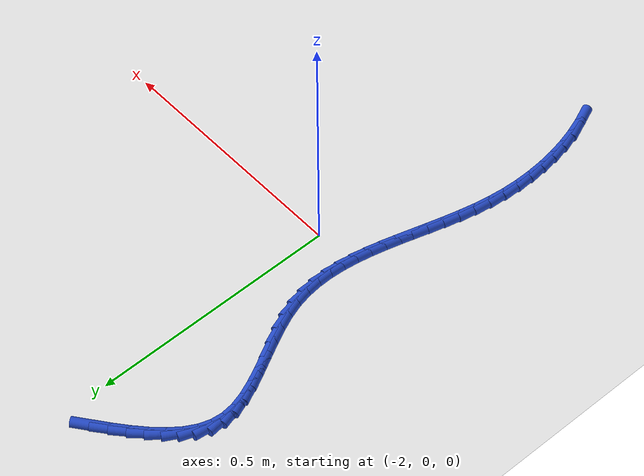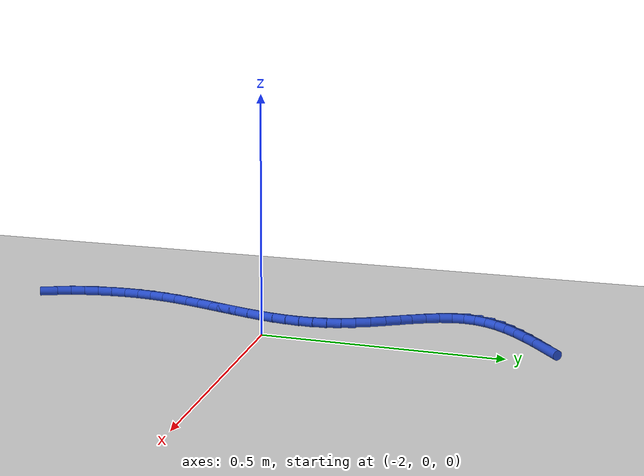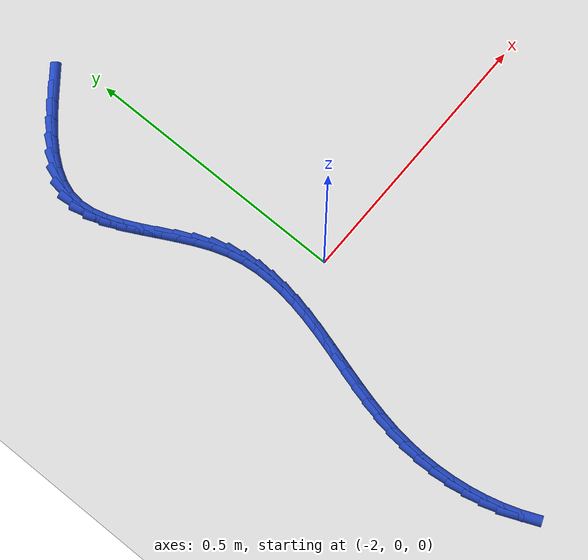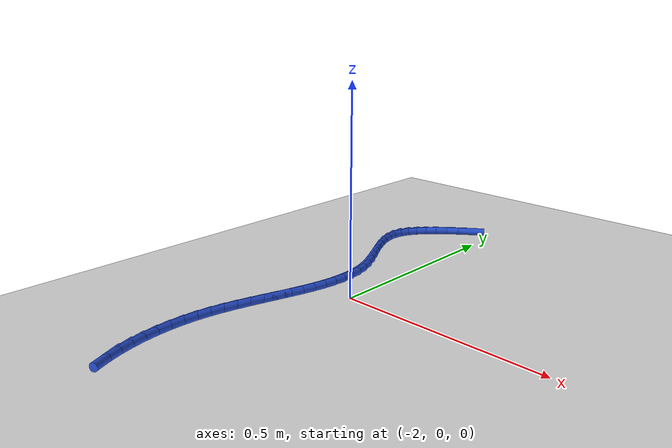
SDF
<sdf version="1.6">
 <world name="default">
  <model name="ground_plane">
   <static>1</static>
   <link name="link">
    <collision name="collision">
     <geometry><plane><normal>0 0 1</normal><size>100 100</size></plane></geometry>
     <surface><friction><ode><mu>100</mu><mu2>50</mu2></ode></friction></surface>
    </collision>
    <visual name="visual">
     <cast_shadows>0</cast_shadows>
     <geometry><plane><normal>0 0 1</normal><size>100 100</size></plane></geometry>
     <material>
      <script><uri>file://media/materials/scripts/gazebo.material</uri><name>Gazebo/WhiteGlow</name></script>
     </material>
    </visual>
   </link>
  </model>
  <model name="line">
   <link name="link_99">
    <pose>-2.0557390016919665 0.5718624346611899 0.01 0 1.57 0.6467382586507162</pose>
    <collision name="collision">
     <geometry><cylinder><radius>0.01</radius><length>0.08</length></cylinder></geometry>
    </collision>
    <visual name="visual">
     <material>
      <script><name>Gazebo/Blue</name><uri>file://media/materials/scripts/gazebo.material</uri></script>
     </material>
     <geometry><cylinder><radius>0.01</radius><length>0.08</length></cylinder></geometry>
    </visual>
   </link>
   <link name="link_100">
    <pose>-2.0831698718942047 0.5511501972237662 0.01 0 1.57 0.6813096067061677</pose>
    <collision name="collision">
     <geometry><cylinder><radius>0.01</radius><length>0.08</length></cylinder></geometry>
    </collision>
    <visual name="visual">
     <material>
      <script><name>Gazebo/Blue</name><uri>file://media/materials/scripts/gazebo.material</uri></script>
     </material>
     <geometry><cylinder><radius>0.01</radius><length>0.08</length></cylinder></geometry>
    </visual>
   </link>
   <link name="link_101">
    <pose>-2.1090638637468224 0.5301545802329933 0.01 0 1.57 0.7340614509869138</pose>
    <collision name="collision">
     <geometry><cylinder><radius>0.01</radius><length>0.08</length></cylinder></geometry>
    </collision>
    <visual name="visual">
     <material>
      <script><name>Gazebo/Blue</name><uri>file://media/materials/scripts/gazebo.material</uri></script>
     </material>
     <geometry><cylinder><radius>0.01</radius><length>0.08</length></cylinder></geometry>
    </visual>
   </link>
   <link name="link_102">
    <pose>-2.132768605227695 0.5087667774831268 0.01 0 1.57 0.8093849002904758</pose>
    <collision name="collision">
     <geometry><cylinder><radius>0.01</radius><length>0.08</length></cylinder></geometry>
    </collision>
    <visual name="visual">
     <material>
      <script><name>Gazebo/Blue</name><uri>file://media/materials/scripts/gazebo.material</uri></script>
     </material>
     <geometry><cylinder><radius>0.01</radius><length>0.08</length></cylinder></geometry>
    </visual>
   </link>
   <link name="link_103">
    <pose>-2.1536317243146965 0.4868779827684223 0.01 0 1.57 0.9133573753785613</pose>
    <collision name="collision">
     <geometry><cylinder><radius>0.01</radius><length>0.08</length></cylinder></geometry>
    </collision>
    <visual name="visual">
     <material>
      <script><name>Gazebo/Blue</name><uri>file://media/materials/scripts/gazebo.material</uri></script>
     </material>
     <geometry><cylinder><radius>0.01</radius><length>0.08</length></cylinder></geometry>
    </visual>
   </link>
   <link name="link_104">
    <pose>-2.1710008489857024 0.46437938988313526 0.01 0 1.57 1.0530869108083625</pose>
    <collision name="collision">
     <geometry><cylinder><radius>0.01</radius><length>0.08</length></cylinder></geometry>
    </collision>
    <visual name="visual">
     <material>
      <script><name>Gazebo/Blue</name><uri>file://media/materials/scripts/gazebo.material</uri></script>
     </material>
     <geometry><cylinder><radius>0.01</radius><length>0.08</length></cylinder></geometry>
    </visual>
   </link>
   <link name="link_105">
    <pose>-2.184223607218586 0.4411621926215221 0.01 0 1.57 1.23381005545851</pose>
    <collision name="collision">
     <geometry><cylinder><radius>0.01</radius><length>0.08</length></cylinder></geometry>
    </collision>
    <visual name="visual">
     <material>
      <script><name>Gazebo/Blue</name><uri>file://media/materials/scripts/gazebo.material</uri></script>
     </material>
     <geometry><cylinder><radius>0.01</radius><length>0.08</length></cylinder></geometry>
    </visual>
   </link>
   <link name="link_106">
    <pose>-2.1926476269912225 0.41711758477783833 0.01 0 1.57 1.452320812601555</pose>
    <collision name="collision">
     <geometry><cylinder><radius>0.01</radius><length>0.08</length></cylinder></geometry>
    </collision>
    <visual name="visual">
     <material>
      <script><name>Gazebo/Blue</name><uri>file://media/materials/scripts/gazebo.material</uri></script>
     </material>
     <geometry><cylinder><radius>0.01</radius><length>0.08</length></cylinder></geometry>
    </visual>
   </link>
   <link name="link_107">
    <pose>-2.195621158734746 0.3921368440739524 0.01 0 1.57 -1.4668194499661402</pose>
    <collision name="collision">
     <geometry><cylinder><radius>0.01</radius><length>0.08</length></cylinder></geometry>
    </collision>
    <visual name="visual">
     <material>
      <script><name>Gazebo/Blue</name><uri>file://media/materials/scripts/gazebo.material</uri></script>
     </material>
     <geometry><cylinder><radius>0.01</radius><length>0.08</length></cylinder></geometry>
    </visual>
   </link>
   <link name="link_108">
    <pose>-2.1929111961443186 0.3661677088928783 0.01 0 1.57 -1.2991048497117912</pose>
    <collision name="collision">
     <geometry><cylinder><radius>0.01</radius><length>0.08</length></cylinder></geometry>
    </collision>
    <visual name="visual">
     <material>
      <script><name>Gazebo/Blue</name><uri>file://media/materials/scripts/gazebo.material</uri></script>
     </material>
     <geometry><cylinder><radius>0.01</radius><length>0.08</length></cylinder></geometry>
    </visual>
   </link>
   <link name="link_109">
    <pose>-2.185429819459024 0.3393123137569652 0.01 0 1.57 -1.187128174499997</pose>
    <collision name="collision">
     <geometry><cylinder><radius>0.01</radius><length>0.08</length></cylinder></geometry>
    </collision>
    <visual name="visual">
     <material>
      <script><name>Gazebo/Blue</name><uri>file://media/materials/scripts/gazebo.material</uri></script>
     </material>
     <geometry><cylinder><radius>0.01</radius><length>0.08</length></cylinder></geometry>
    </visual>
   </link>
   <link name="link_110">
    <pose>-2.1742830670496267 0.3116989452614186 0.01 0 1.57 -1.118985316839245</pose>
    <collision name="collision">
     <geometry><cylinder><radius>0.01</radius><length>0.08</length></cylinder></geometry>
    </collision>
    <visual name="visual">
     <material>
      <script><name>Gazebo/Blue</name><uri>file://media/materials/scripts/gazebo.material</uri></script>
     </material>
     <geometry><cylinder><radius>0.01</radius><length>0.08</length></cylinder></geometry>
    </visual>
   </link>
   <link name="link_111">
    <pose>-2.160576977286894 0.2834558900014444 0.01 0 1.57 -1.085481649178611</pose>
    <collision name="collision">
     <geometry><cylinder><radius>0.01</radius><length>0.08</length></cylinder></geometry>
    </collision>
    <visual name="visual">
     <material>
      <script><name>Gazebo/Blue</name><uri>file://media/materials/scripts/gazebo.material</uri></script>
     </material>
     <geometry><cylinder><radius>0.01</radius><length>0.08</length></cylinder></geometry>
    </visual>
   </link>
   <link name="link_112">
    <pose>-2.1454175885415903 0.2547114345722481 0.01 0 1.57 -1.0814467064260807</pose>
    <collision name="collision">
     <geometry><cylinder><radius>0.01</radius><length>0.08</length></cylinder></geometry>
    </collision>
    <visual name="visual">
     <material>
      <script><name>Gazebo/Blue</name><uri>file://media/materials/scripts/gazebo.material</uri></script>
     </material>
     <geometry><cylinder><radius>0.01</radius><length>0.08</length></cylinder></geometry>
    </visual>
   </link>
   <link name="link_113">
    <pose>-2.1299109391844824 0.2255938655690364 0.01 0 1.57 -1.1053337969596577</pose>
    <collision name="collision">
     <geometry><cylinder><radius>0.01</radius><length>0.08</length></cylinder></geometry>
    </collision>
    <visual name="visual">
     <material>
      <script><name>Gazebo/Blue</name><uri>file://media/materials/scripts/gazebo.material</uri></script>
     </material>
     <geometry><cylinder><radius>0.01</radius><length>0.08</length></cylinder></geometry>
    </visual>
   </link>
   <link name="link_114">
    <pose>-2.115163067586335 0.19623146958701465 0.01 0 1.57 -1.1587839795182016</pose>
    <collision name="collision">
     <geometry><cylinder><radius>0.01</radius><length>0.08</length></cylinder></geometry>
    </collision>
    <visual name="visual">
     <material>
      <script><name>Gazebo/Blue</name><uri>file://media/materials/scripts/gazebo.material</uri></script>
     </material>
     <geometry><cylinder><radius>0.01</radius><length>0.08</length></cylinder></geometry>
    </visual>
   </link>
   <link name="link_115">
    <pose>-2.102280012117916 0.16675253322138844 0.01 0 1.57 -1.2460354399811377</pose>
    <collision name="collision">
     <geometry><cylinder><radius>0.01</radius><length>0.08</length></cylinder></geometry>
    </collision>
    <visual name="visual">
     <material>
      <script><name>Gazebo/Blue</name><uri>file://media/materials/scripts/gazebo.material</uri></script>
     </material>
     <geometry><cylinder><radius>0.01</radius><length>0.08</length></cylinder></geometry>
    </visual>
   </link>
   <link name="link_116">
    <pose>-2.092358608831511 0.13728431834576643 0.01 0 1.57 -1.3559712207606054</pose>
    <collision name="collision">
     <geometry><cylinder><radius>0.01</radius><length>0.08</length></cylinder></geometry>
    </collision>
    <visual name="visual">
     <material>
      <script><name>Gazebo/Blue</name><uri>file://media/materials/scripts/gazebo.material</uri></script>
     </material>
     <geometry><cylinder><radius>0.01</radius><length>0.08</length></cylinder></geometry>
    </visual>
   </link>
   <link name="link_117">
    <pose>-2.0859456224500907 0.10789283379487527 0.01 0 1.57 -1.4618618767280465</pose>
    <collision name="collision">
     <geometry><cylinder><radius>0.01</radius><length>0.08</length></cylinder></geometry>
    </collision>
    <visual name="visual">
     <material>
      <script><name>Gazebo/Blue</name><uri>file://media/materials/scripts/gazebo.material</uri></script>
     </material>
     <geometry><cylinder><radius>0.01</radius><length>0.08</length></cylinder></geometry>
    </visual>
   </link>
   <link name="link_118">
    <pose>-2.0827363939886445 0.0785492783548004 0.01 0 1.57 -1.5577320108980972</pose>
    <collision name="collision">
     <geometry><cylinder><radius>0.01</radius><length>0.08</length></cylinder></geometry>
    </collision>
    <visual name="visual">
     <material>
      <script><name>Gazebo/Blue</name><uri>file://media/materials/scripts/gazebo.material</uri></script>
     </material>
     <geometry><cylinder><radius>0.01</radius><length>0.08</length></cylinder></geometry>
    </visual>
   </link>
   <link name="link_119">
    <pose>-2.082353162253478 0.04921671053564384 0.01 0 1.57 1.5005745201670961</pose>
    <collision name="collision">
     <geometry><cylinder><radius>0.01</radius><length>0.08</length></cylinder></geometry>
    </collision>
    <visual name="visual">
     <material>
      <script><name>Gazebo/Blue</name><uri>file://media/materials/scripts/gazebo.material</uri></script>
     </material>
     <geometry><cylinder><radius>0.01</radius><length>0.08</length></cylinder></geometry>
    </visual>
   </link>
   <link name="link_120">
    <pose>-2.0844181660508956 0.019858188847508985 0.01 0 1.57 1.4311510674082224</pose>
    <collision name="collision">
     <geometry><cylinder><radius>0.01</radius><length>0.08</length></cylinder></geometry>
    </collision>
    <visual name="visual">
     <material>
      <script><name>Gazebo/Blue</name><uri>file://media/materials/scripts/gazebo.material</uri></script>
     </material>
     <geometry><cylinder><radius>0.01</radius><length>0.08</length></cylinder></geometry>
    </visual>
   </link>
   <link name="link_121">
    <pose>-2.0885536441872032 -0.00956322819950203 0.01 0 1.57 1.375879328199381</pose>
    <collision name="collision">
     <geometry><cylinder><radius>0.01</radius><length>0.08</length></cylinder></geometry>
    </collision>
    <visual name="visual">
     <material>
      <script><name>Gazebo/Blue</name><uri>file://media/materials/scripts/gazebo.material</uri></script>
     </material>
     <geometry><cylinder><radius>0.01</radius><length>0.08</length></cylinder></geometry>
    </visual>
   </link>
   <link name="link_122">
    <pose>-2.094381835468704 -0.03908448209528668 0.01 0 1.57 1.3344475981279746</pose>
    <collision name="collision">
     <geometry><cylinder><radius>0.01</radius><length>0.08</length></cylinder></geometry>
    </collision>
    <visual name="visual">
     <material>
      <script><name>Gazebo/Blue</name><uri>file://media/materials/scripts/gazebo.material</uri></script>
     </material>
     <geometry><cylinder><radius>0.01</radius><length>0.08</length></cylinder></geometry>
    </visual>
   </link>
   <link name="link_123">
    <pose>-2.101524978701704 -0.0687425143297424 0.01 0 1.57 1.3062798013521006</pose>
    <collision name="collision">
     <geometry><cylinder><radius>0.01</radius><length>0.08</length></cylinder></geometry>
    </collision>
    <visual name="visual">
     <material>
      <script><name>Gazebo/Blue</name><uri>file://media/materials/scripts/gazebo.material</uri></script>
     </material>
     <geometry><cylinder><radius>0.01</radius><length>0.08</length></cylinder></geometry>
    </visual>
   </link>
   <link name="link_124">
    <pose>-2.1096053126925076 -0.0985742663927667 0.01 0 1.57 1.2907675003837267</pose>
    <collision name="collision">
     <geometry><cylinder><radius>0.01</radius><length>0.08</length></cylinder></geometry>
    </collision>
    <visual name="visual">
     <material>
      <script><name>Gazebo/Blue</name><uri>file://media/materials/scripts/gazebo.material</uri></script>
     </material>
     <geometry><cylinder><radius>0.01</radius><length>0.08</length></cylinder></geometry>
    </visual>
   </link>
   <link name="link_125">
    <pose>-2.1182450762474208 -0.12861667977425778 0.01 0 1.57 1.287402550965536</pose>
    <collision name="collision">
     <geometry><cylinder><radius>0.01</radius><length>0.08</length></cylinder></geometry>
    </collision>
    <visual name="visual">
     <material>
      <script><name>Gazebo/Blue</name><uri>file://media/materials/scripts/gazebo.material</uri></script>
     </material>
     <geometry><cylinder><radius>0.01</radius><length>0.08</length></cylinder></geometry>
    </visual>
   </link>
   <link name="link_126">
    <pose>-2.127066508172747 -0.1589066959641116 0.01 0 1.57 1.2958336147172622</pose>
    <collision name="collision">
     <geometry><cylinder><radius>0.01</radius><length>0.08</length></cylinder></geometry>
    </collision>
    <visual name="visual">
     <material>
      <script><name>Gazebo/Blue</name><uri>file://media/materials/scripts/gazebo.material</uri></script>
     </material>
     <geometry><cylinder><radius>0.01</radius><length>0.08</length></cylinder></geometry>
    </visual>
   </link>
   <link name="link_127">
    <pose>-2.135691847274792 -0.1894812564522263 0.01 0 1.57 1.3158670869799896</pose>
    <collision name="collision">
     <geometry><cylinder><radius>0.01</radius><length>0.08</length></cylinder></geometry>
    </collision>
    <visual name="visual">
     <material>
      <script><name>Gazebo/Blue</name><uri>file://media/materials/scripts/gazebo.material</uri></script>
     </material>
     <geometry><cylinder><radius>0.01</radius><length>0.08</length></cylinder></geometry>
    </visual>
   </link>
   <link name="link_128">
    <pose>-2.1437433323598607 -0.22037730272849948 0.01 0 1.57 1.3474237648838536</pose>
    <collision name="collision">
     <geometry><cylinder><radius>0.01</radius><length>0.08</length></cylinder></geometry>
    </collision>
    <visual name="visual">
     <material>
      <script><name>Gazebo/Blue</name><uri>file://media/materials/scripts/gazebo.material</uri></script>
     </material>
     <geometry><cylinder><radius>0.01</radius><length>0.08</length></cylinder></geometry>
    </visual>
   </link>
   <link name="link_129">
    <pose>-2.150843202234257 -0.2516317762828285 0.01 0 1.57 1.3904542288289439</pose>
    <collision name="collision">
     <geometry><cylinder><radius>0.01</radius><length>0.08</length></cylinder></geometry>
    </collision>
    <visual name="visual">
     <material>
      <script><name>Gazebo/Blue</name><uri>file://media/materials/scripts/gazebo.material</uri></script>
     </material>
     <geometry><cylinder><radius>0.01</radius><length>0.08</length></cylinder></geometry>
    </visual>
   </link>
   <link name="link_130">
    <pose>-2.156613695704287 -0.2832816186051109 0.01 0 1.57 1.4448103291620713</pose>
    <collision name="collision">
     <geometry><cylinder><radius>0.01</radius><length>0.08</length></cylinder></geometry>
    </collision>
    <visual name="visual">
     <material>
      <script><name>Gazebo/Blue</name><uri>file://media/materials/scripts/gazebo.material</uri></script>
     </material>
     <geometry><cylinder><radius>0.01</radius><length>0.08</length></cylinder></geometry>
    </visual>
   </link>
   <link name="link_131">
    <pose>-2.1606771135948835 -0.31536372577922744 0.01 0 1.57 1.507420345339618</pose>
    <collision name="collision">
     <geometry><cylinder><radius>0.01</radius><length>0.08</length></cylinder></geometry>
    </collision>
    <visual name="visual">
     <material>
      <script><name>Gazebo/Blue</name><uri>file://media/materials/scripts/gazebo.material</uri></script>
     </material>
     <geometry><cylinder><radius>0.01</radius><length>0.08</length></cylinder></geometry>
    </visual>
   </link>
   <link name="link_132">
    <pose>-2.1627389817823217 -0.3478540619052008 0.01 0 1.57 1.570385479138127</pose>
    <collision name="collision">
     <geometry><cylinder><radius>0.01</radius><length>0.08</length></cylinder></geometry>
    </collision>
    <visual name="visual">
     <material>
      <script><name>Gazebo/Blue</name><uri>file://media/materials/scripts/gazebo.material</uri></script>
     </material>
     <geometry><cylinder><radius>0.01</radius><length>0.08</length></cylinder></geometry>
    </visual>
   </link>
   <link name="link_133">
    <pose>-2.162752413733 -0.3805473235103437 0.01 0 1.57 -1.5085307716171719</pose>
    <collision name="collision">
     <geometry><cylinder><radius>0.01</radius><length>0.08</length></cylinder></geometry>
    </collision>
    <visual name="visual">
     <material>
      <script><name>Gazebo/Blue</name><uri>file://media/materials/scripts/gazebo.material</uri></script>
     </material>
     <geometry><cylinder><radius>0.01</radius><length>0.08</length></cylinder></geometry>
    </visual>
   </link>
   <link name="link_134">
    <pose>-2.1607163551126582 -0.41320465175871096 0.01 0 1.57 -1.4452621733256839</pose>
    <collision name="collision">
     <geometry><cylinder><radius>0.01</radius><length>0.08</length></cylinder></geometry>
    </collision>
    <visual name="visual">
     <material>
      <script><name>Gazebo/Blue</name><uri>file://media/materials/scripts/gazebo.material</uri></script>
     </material>
     <geometry><cylinder><radius>0.01</radius><length>0.08</length></cylinder></geometry>
    </visual>
   </link>
   <link name="link_135">
    <pose>-2.1566297515870283 -0.44558718781435613 0.01 0 1.57 -1.3805184404140447</pose>
    <collision name="collision">
     <geometry><cylinder><radius>0.01</radius><length>0.08</length></cylinder></geometry>
    </collision>
    <visual name="visual">
     <material>
      <script><name>Gazebo/Blue</name><uri>file://media/materials/scripts/gazebo.material</uri></script>
     </material>
     <geometry><cylinder><radius>0.01</radius><length>0.08</length></cylinder></geometry>
    </visual>
   </link>
   <link name="link_136">
    <pose>-2.150491548821848 -0.47745607284133285 0.01 0 1.57 -1.3134023855375687</pose>
    <collision name="collision">
     <geometry><cylinder><radius>0.01</radius><length>0.08</length></cylinder></geometry>
    </collision>
    <visual name="visual">
     <material>
      <script><name>Gazebo/Blue</name><uri>file://media/materials/scripts/gazebo.material</uri></script>
     </material>
     <geometry><cylinder><radius>0.01</radius><length>0.08</length></cylinder></geometry>
    </visual>
   </link>
   <link name="link_137">
    <pose>-2.1423006924828534 -0.5085724480036947 0.01 0 1.57 -1.2429964643745097</pose>
    <collision name="collision">
     <geometry><cylinder><radius>0.01</radius><length>0.08</length></cylinder></geometry>
    </collision>
    <visual name="visual">
     <material>
      <script><name>Gazebo/Blue</name><uri>file://media/materials/scripts/gazebo.material</uri></script>
     </material>
     <geometry><cylinder><radius>0.01</radius><length>0.08</length></cylinder></geometry>
    </visual>
   </link>
   <link name="link_138">
    <pose>-2.132056128235782 -0.538697454465496 0.01 0 1.57 -1.168367521911384</pose>
    <collision name="collision">
     <geometry><cylinder><radius>0.01</radius><length>0.08</length></cylinder></geometry>
    </collision>
    <visual name="visual">
     <material>
      <script><name>Gazebo/Blue</name><uri>file://media/materials/scripts/gazebo.material</uri></script>
     </material>
     <geometry><cylinder><radius>0.01</radius><length>0.08</length></cylinder></geometry>
    </visual>
   </link>
  </model>
 </world>
</sdf>
